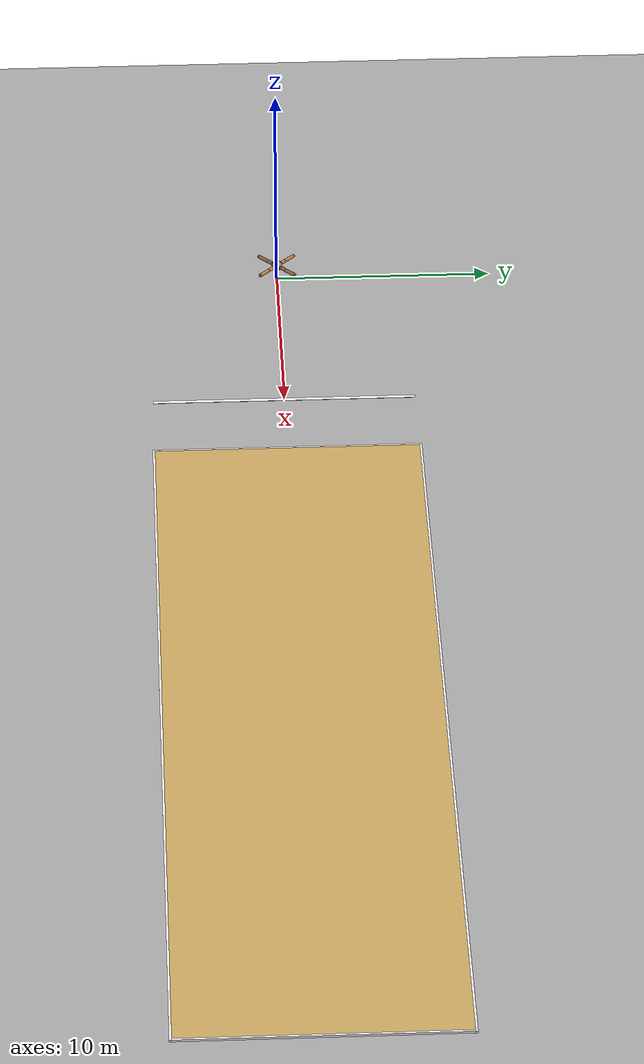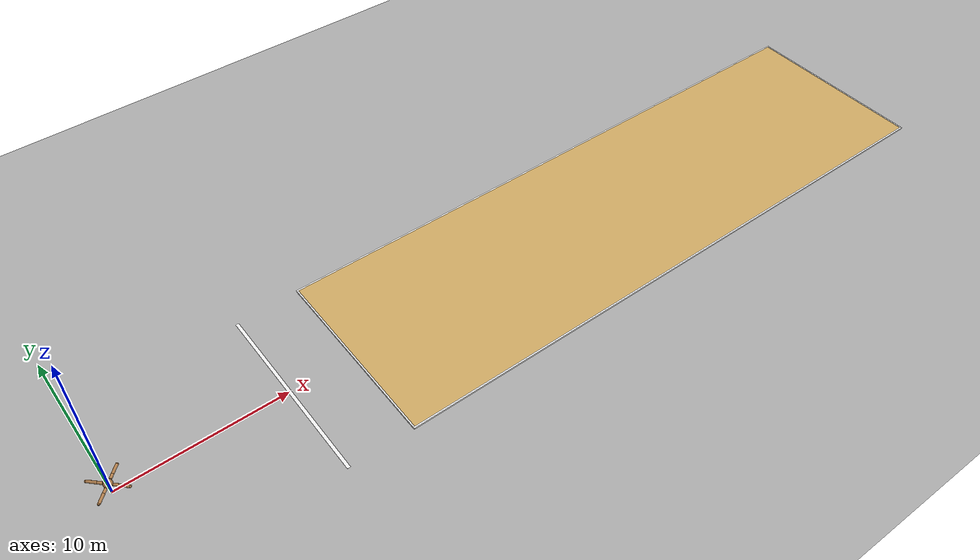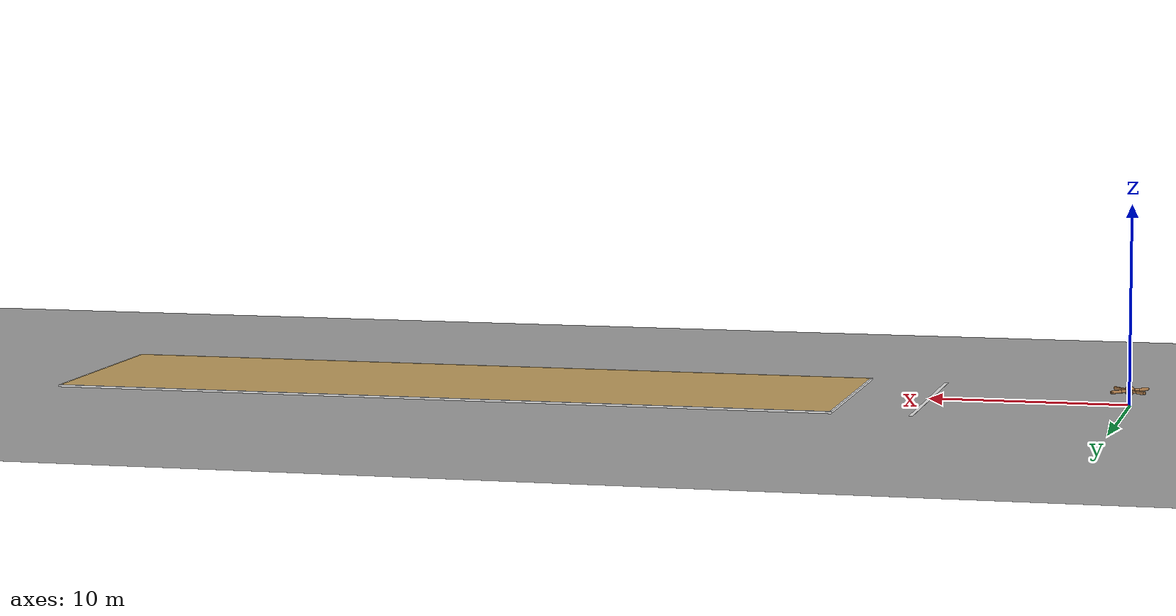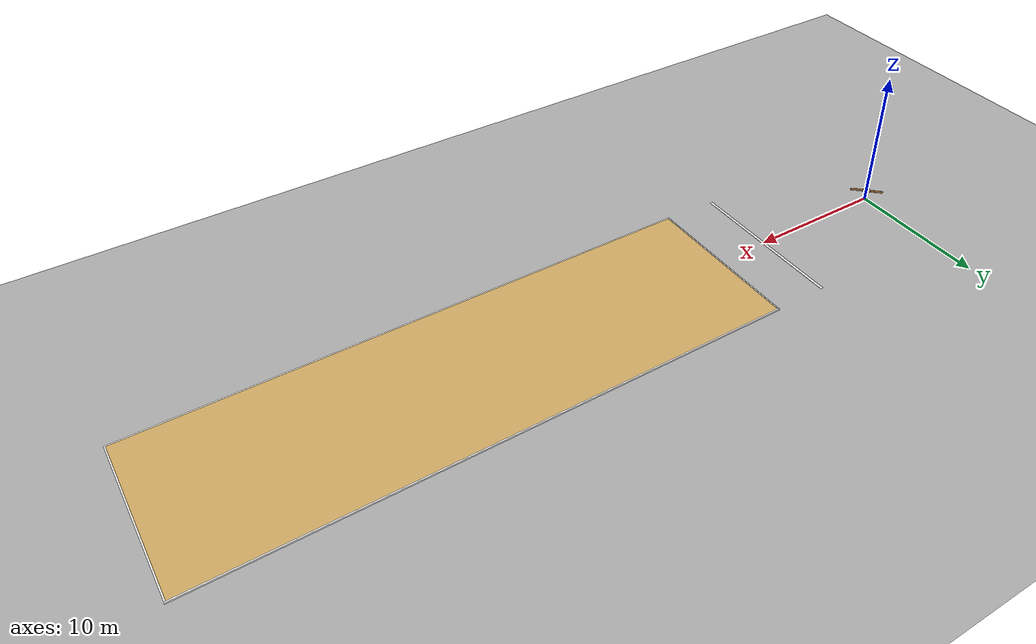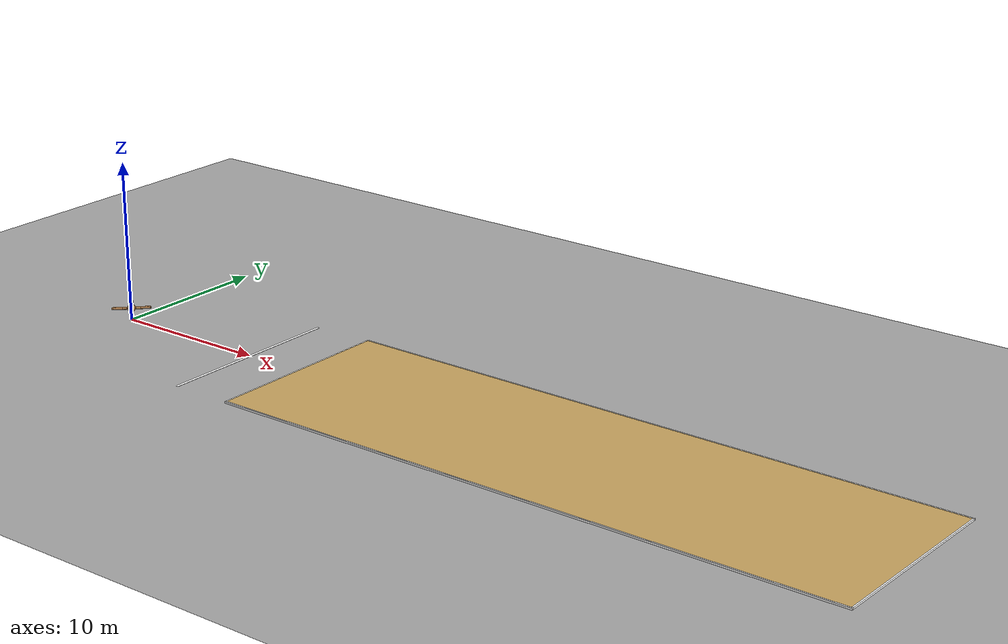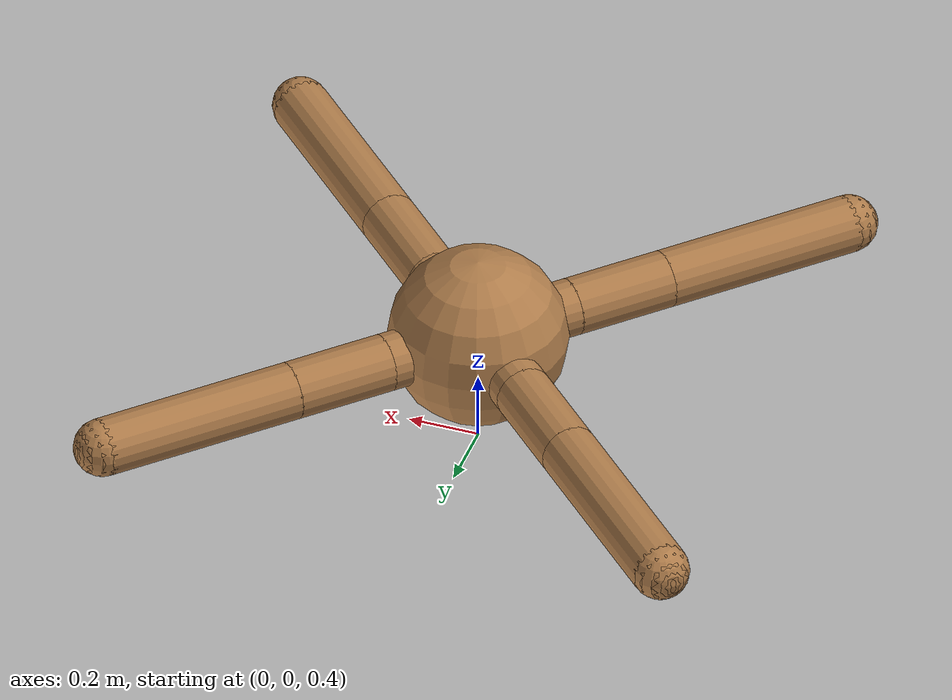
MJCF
<mujoco model="quadruped long jump">
  <option timestep="0.003" iterations="1" ls_iterations="5" solver="Newton">
    <flag eulerdamp="disable"/>
  </option>

  <statistic center="0 0 0.1" extent="10.0" meansize="0.04"/>

  <visual>
    <rgba force="1 0 0 1" haze = "0.71 0.71 0.71 0.51" fog="0.71 0.71 0.71 1"/>
    <global azimuth="140" elevation="-20" offwidth="1280" offheight="720"/>
  </visual>

  <asset>
    <texture type="skybox" builtin="gradient" rgb1="0.71 0.71 0.71" rgb2="0.71 0.71 0.71" width="800" height="800"/>
    <texture name="grey_squares" builtin="checker" height="800" width="800" rgb1="0.71 0.71 0.71" rgb2="0.71 0.71 0.71" type="2d" mark="edge" markrgb="1 1 1"/>
    <texture name="sand_texture" builtin="flat" width="1024" height="1024" rgb1="0.851 0.698 0.412" mark="random" markrgb="0.85 0.75 0.4" random="0.11" />

    <material name="body" rgba=".7 .5 .3 1" specular="0.9" shininess="0.8"/>
    <material name="floor" reflectance="0.2" texrepeat="1 1" texuniform="true" texture="grey_squares"/>
    <material name="sand_material" texture="sand_texture" texrepeat="100 100" texuniform="false" rgba="1 1 1 1"/>
  </asset>

  <default>
    <joint armature="1" damping="1" limited="true"/>
    <geom conaffinity="0" condim="3" contype="0"/>
    <default class="quadruped">
      <geom type="capsule" material="body" density="5"/>
    </default>
  </default>

  <worldbody>
    <geom name="floor" pos="0 0 0" size="100 100 0.010" type="plane" material="floor"/>

    <!-- Quadruped -->
    <body name="quadruped" childclass="quadruped" pos="0 0 0.75">
      <light name="tracking_light" pos="0 0 7" dir="0 0 -1" specular="0.8 0.8 0.8" mode="trackcom"/>
      <camera name="cam_default" mode="trackcom" pos="4.660 -4.778 1.745" xyaxes="0.708 0.707 0.000 -0.240 0.241 0.940"/>
      <site name="quadruped" size="0.01" pos="0 0 0"/>
      <geom name="quadruped_torso" pos="0 0 0" size="0.25" type="sphere"/>
      <joint name="quadruped_root" type="free" armature="0" damping="0" limited="false" margin="0.01" pos="0 0 0"/>

      <body name="quadruped_front_left_leg" pos="0 0 0">
        <geom name="quadruped_front_left_aux" fromto="0.0 0.0 0.0 0.2 0.2 0.0" size="0.08" type="capsule"/>
        <body name="quadruped_front_left_aux" pos="0.2 0.2 0">
          <joint name="quadruped_front_left_hip" axis="0 0 1" pos="0.0 0.0 0.0" range="-30 30" type="hinge"/>
          <geom name="quadruped_front_left_leg" fromto="0.0 0.0 0.0 0.2 0.2 0.0" size="0.08" type="capsule"/>
          <body name="quadruped_front_left_knee" pos="0.2 0.2 0">
            <joint name="quadruped_front_left_ankle" axis="-1 1 0" pos="0.0 0.0 0.0" range="30 70" type="hinge"/>
            <geom name="quadruped_front_left_ankle" fromto="0.0 0.0 0.0 0.4 0.4 0.0" size="0.08" type="capsule"/>
            <geom name="quadruped_front_left_foot" pos="0.4 0.4 0" size="0.08" type="sphere" mass="0"/>
          </body>
        </body>
      </body>

      <body name="quadruped_front_right_leg" pos="0 0 0">
        <geom name="quadruped_front_right_aux" fromto="0.0 0.0 0.0 -0.2 0.2 0.0" size="0.08" type="capsule"/>
        <body name="quadruped_front_right_aux" pos="-0.2 0.2 0">
          <joint name="quadruped_front_right_hip" axis="0 0 1" pos="0.0 0.0 0.0" range="-30 30" type="hinge"/>
          <geom name="quadruped_front_right_leg" fromto="0.0 0.0 0.0 -0.2 0.2 0.0" size="0.08" type="capsule"/>
          <body name="quadruped_front_right_knee" pos="-0.2 0.2 0">
            <joint name="quadruped_front_right_ankle" axis="1 1 0" pos="0.0 0.0 0.0" range="-70 -30" type="hinge"/>
            <geom name="quadruped_front_right_ankle" fromto="0.0 0.0 0.0 -0.4 0.4 0.0" size="0.08" type="capsule"/>
            <geom name="quadruped_front_right_foot" pos="-0.4 0.4 0" size="0.08" type="sphere" mass="0"/>
          </body>
        </body>
      </body>

      <body name="quadruped_back_left_leg" pos="0 0 0">
        <geom name="quadruped_back_left_aux" fromto="0.0 0.0 0.0 -0.2 -0.2 0.0" size="0.08" type="capsule"/>
        <body name="quadruped_back_left_aux" pos="-0.2 -0.2 0">
          <joint name="quadruped_back_left_hip" axis="0 0 1" pos="0.0 0.0 0.0" range="-30 30" type="hinge"/>
          <geom name="quadruped_back_left_leg" fromto="0.0 0.0 0.0 -0.2 -0.2 0.0" size="0.08" type="capsule"/>
          <body name="quadruped_back_left_knee" pos="-0.2 -0.2 0">
            <joint name="quadruped_back_left_ankle" axis="-1 1 0" pos="0.0 0.0 0.0" range="-70 -30" type="hinge"/>
            <geom name="quadruped_back_left_ankle" fromto="0.0 0.0 0.0 -0.4 -0.4 0.0" size="0.08" type="capsule"/>
            <geom name="quadruped_back_left_foot" pos="-0.4 -0.4 0" size="0.08" type="sphere" mass="0"/>
          </body>
        </body>
      </body>

      <body name="quadruped_back_right_leg" pos="0 0 0">
        <geom name="quadruped_back_right_aux" fromto="0.0 0.0 0.0 0.2 -0.2 0.0" size="0.08" type="capsule"/>
        <body name="quadruped_back_right_aux" pos="0.2 -0.2 0">
          <joint name="quadruped_back_right_hip" axis="0 0 1" pos="0.0 0.0 0.0" range="-30 30" type="hinge"/>
          <geom name="quadruped_back_right_leg" fromto="0.0 0.0 0.0 0.2 -0.2 0.0" size="0.08" type="capsule"/>
          <body name="quadruped_back_right_knee" pos="0.2 -0.2 0">
            <joint name="quadruped_back_right_ankle" axis="1 1 0" pos="0.0 0.0 0.0" range="30 70" type="hinge"/>
            <geom name="quadruped_back_right_ankle" fromto="0.0 0.0 0.0 0.4 -0.4 0.0" size="0.08" type="capsule"/>
            <geom name="quadruped_back_right_foot" pos="0.4 -0.4 0" size="0.08" type="sphere" mass="0"/>
          </body>
        </body>
      </body>
    </body>

    <geom name="jump_line" type="box" size="0.1 6 0.005" pos="10 0 0.005" rgba="1 1 1 1" />

    <body name="sand_pit" pos="14 0 0">
      <geom name="sand" type="box" size="20 6 0.05" pos="20 0 0.05" material="sand_material"/>
      <geom name="border_front" type="box" size="0.05 6 0.05" pos="-0.05 0 0.05" rgba="1 1 1 1" />
      <geom name="border_back" type="box" size="0.05 6 0.05" pos="40.05 0 0.05" rgba="1 1 1 1" />
      <geom name="border_left" type="box" size="20.1 0.05 0.05" pos="20 6.05 0.05" rgba="1 1 1 1" />
      <geom name="border_right" type="box" size="20.1 0.05 0.05" pos="20 -6.05 0.05" rgba="1 1 1 1" />
    </body>
  </worldbody>

  <contact>
    <!-- Floor contacts -->
    <pair geom1="quadruped_front_left_foot" geom2="floor" friction="1 1 0.5 0.5 0.5"/>
    <pair geom1="quadruped_front_right_foot" geom2="floor" friction="1 1 0.5 0.5 0.5"/>
    <pair geom1="quadruped_back_left_foot" geom2="floor" friction="1 1 0.5 0.5 0.5"/>
    <pair geom1="quadruped_back_right_foot" geom2="floor" friction="1 1 0.5 0.5 0.5"/>
    <pair geom1="quadruped_torso" geom2="floor" friction="1 1 0.5 0.5 0.5"/>

    <!-- Sand contacts -->
    <pair geom1="quadruped_front_left_foot" geom2="sand" friction="1 1 0.5 0.5 0.5"/>
    <pair geom1="quadruped_front_right_foot" geom2="sand" friction="1 1 0.5 0.5 0.5"/>
    <pair geom1="quadruped_back_left_foot" geom2="sand" friction="1 1 0.5 0.5 0.5"/>
    <pair geom1="quadruped_back_right_foot" geom2="sand" friction="1 1 0.5 0.5 0.5"/>
    <pair geom1="quadruped_torso" geom2="sand" friction="1 1 0.5 0.5 0.5"/>
  </contact>

  <!-- Quadruped has 8 Actuators -->
  <actuator>
    <motor ctrllimited="true" ctrlrange="-1.0 1.0" joint="quadruped_front_left_hip" gear="150"/>
    <motor ctrllimited="true" ctrlrange="-1.0 1.0" joint="quadruped_front_left_ankle" gear="150"/>
    <motor ctrllimited="true" ctrlrange="-1.0 1.0" joint="quadruped_front_right_hip" gear="150"/>
    <motor ctrllimited="true" ctrlrange="-1.0 1.0" joint="quadruped_front_right_ankle" gear="150"/>
    <motor ctrllimited="true" ctrlrange="-1.0 1.0" joint="quadruped_back_left_hip" gear="150"/>
    <motor ctrllimited="true" ctrlrange="-1.0 1.0" joint="quadruped_back_left_ankle" gear="150"/>
    <motor ctrllimited="true" ctrlrange="-1.0 1.0" joint="quadruped_back_right_hip" gear="150"/>
    <motor ctrllimited="true" ctrlrange="-1.0 1.0" joint="quadruped_back_right_ankle" gear="150"/>
  </actuator>

  <keyframe>
    <key name="init" qpos="-10.0 0.0 0.55 1.0 0.0 0.0 0.0 0.0 1.0 0.0 -1.0 0.0 -1.0 0.0 1.0"/>
  </keyframe>
</mujoco>
